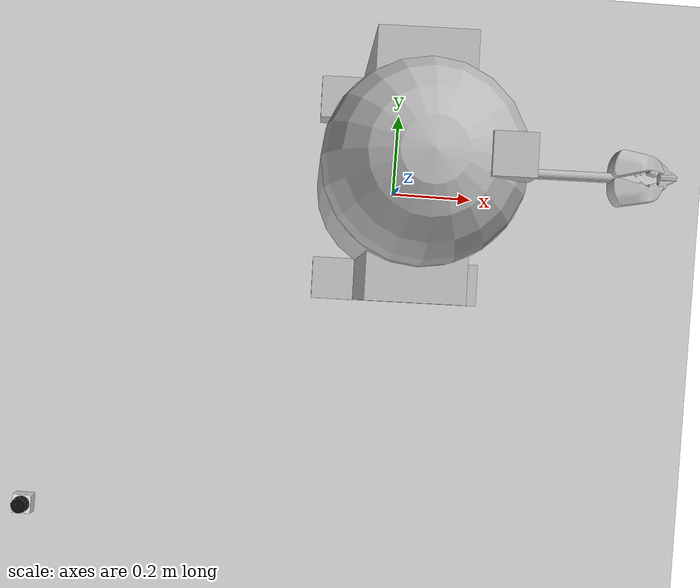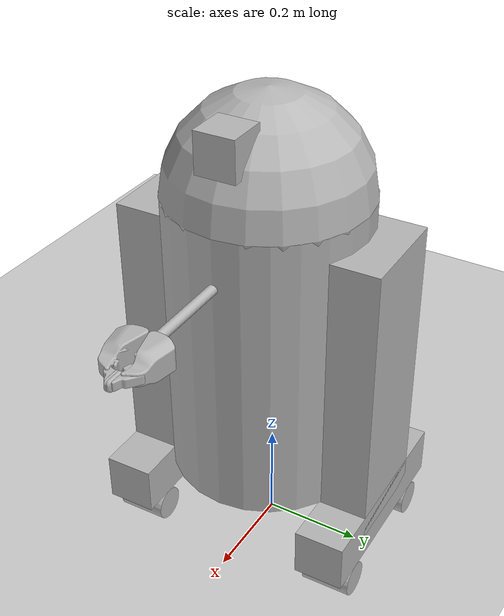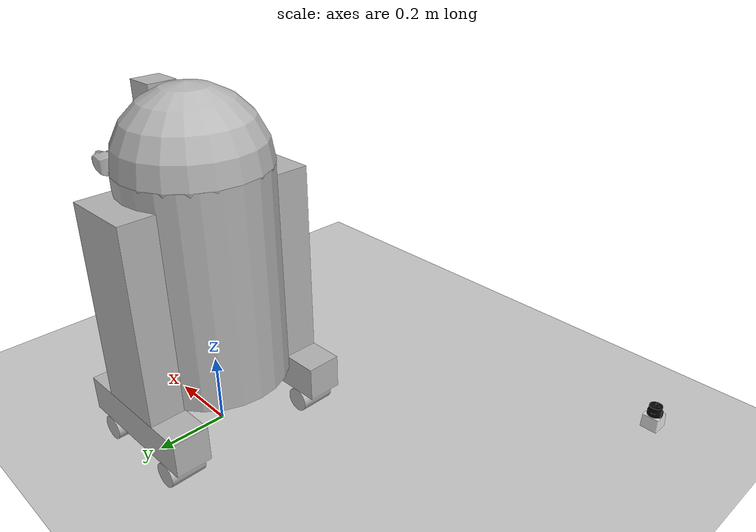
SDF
<sdf version="1.6">
 <world name="default">
  <light name="sun" type="directional">
   <pose>0 0 10 0 -0 0</pose>
   <diffuse>0.8 0.8 0.8 1</diffuse>
   <specular>0.2 0.2 0.2 1</specular>
   <attenuation>
    <range>1000</range>
    <constant>0.9</constant>
    <linear>0.01</linear>
    <quadratic>0.001</quadratic>
   </attenuation>
   <direction>-0.5 0.1 -0.9</direction>
  </light>
  <model name="ground_plane">
   <static>1</static>
   <link name="link">
    <collision name="collision">
     <geometry><plane><normal>0 0 1</normal><size>100 100</size></plane></geometry>
     <surface><friction><ode><mu>100</mu><mu2>50</mu2></ode></friction></surface>
    </collision>
    <visual name="visual">
     <cast_shadows>0</cast_shadows>
     <geometry><plane><normal>0 0 1</normal><size>100 100</size></plane></geometry>
     <material>
      <script><uri>file://media/materials/scripts/gazebo.material</uri><name>Gazebo/Grey</name></script>
     </material>
    </visual>
   </link>
  </model>
  <gravity>0 0 -9.8</gravity>
  <magnetic_field>6e-06 2.3e-05 -4.2e-05</magnetic_field>
  <atmosphere type="adiabatic"/>
  <physics name="default_physics" default="0" type="ode">
   <max_step_size>0.001</max_step_size>
   <real_time_factor>1</real_time_factor>
   <real_time_update_rate>1000</real_time_update_rate>
  </physics>
  <scene><ambient>0.4 0.4 0.4 1</ambient><background>0.7 0.7 0.7 1</background><shadows>1</shadows></scene>
  <audio><device>default</device></audio>
  <spherical_coordinates>
   <surface_model>EARTH_WGS84</surface_model>
   <latitude_deg>0</latitude_deg>
   <longitude_deg>0</longitude_deg>
   <elevation>0</elevation>
   <heading_deg>0</heading_deg>
  </spherical_coordinates>
  <model name="robot">
   <link name="base_link">
    <inertial>
     <pose>0 0 -0.04 0 -0 0</pose>
     <mass>50</mass>
     <inertia><ixx>10.556</ixx><ixy>0</ixy><ixz>0</ixz><iyy>8.62</iyy><iyz>0</iyz><izz>6.936</izz></inertia>
    </inertial>
    <collision name="base_link_collision">
     <geometry><cylinder><length>0.6</length><radius>0.2</radius></cylinder></geometry>
    </collision>
    <collision name="base_link_fixed_joint_lump__left_leg_collision_1">
     <pose>0 0.22 -0.05 3.14159 1.57079 3.14159</pose>
     <geometry><box><size>0.6 0.1 0.2</size></box></geometry>
    </collision>
    <collision name="base_link_fixed_joint_lump__left_base_collision_2">
     <pose>0 0.22 -0.35 0 -0 0</pose>
     <geometry><box><size>0.4 0.1 0.1</size></box></geometry>
    </collision>
    <collision name="base_link_fixed_joint_lump__right_leg_collision_3">
     <pose>0 -0.22 -0.05 3.14159 1.57079 3.14159</pose>
     <geometry><box><size>0.6 0.1 0.2</size></box></geometry>
    </collision>
    <collision name="base_link_fixed_joint_lump__right_base_collision_4">
     <pose>0 -0.22 -0.35 0 -0 0</pose>
     <geometry><box><size>0.4 0.1 0.1</size></box></geometry>
    </collision>
    <visual name="base_link_visual">
     <geometry><cylinder><length>0.6</length><radius>0.2</radius></cylinder></geometry>
    </visual>
    <visual name="base_link_fixed_joint_lump__left_leg_visual_1">
     <pose>0 0.22 -0.05 3.14159 1.57079 3.14159</pose>
     <geometry><box><size>0.6 0.1 0.2</size></box></geometry>
    </visual>
    <visual name="base_link_fixed_joint_lump__left_base_visual_2">
     <pose>0 0.22 -0.35 0 -0 0</pose>
     <geometry><box><size>0.4 0.1 0.1</size></box></geometry>
    </visual>
    <visual name="base_link_fixed_joint_lump__right_leg_visual_3">
     <pose>0 -0.22 -0.05 3.14159 1.57079 3.14159</pose>
     <geometry><box><size>0.6 0.1 0.2</size></box></geometry>
    </visual>
    <visual name="base_link_fixed_joint_lump__right_base_visual_4">
     <pose>0 -0.22 -0.35 0 -0 0</pose>
     <geometry><box><size>0.4 0.1 0.1</size></box></geometry>
    </visual>
   </link>
   <link name="left_back_wheel">
    <pose>-0.133333 0.22 -0.435 0 -0 0</pose>
    <inertial>
     <mass>1</mass>
     <inertia><ixx>1</ixx><ixy>0</ixy><ixz>0</ixz><iyy>1</iyy><iyz>0</iyz><izz>1</izz></inertia>
    </inertial>
    <collision name="left_back_wheel_collision">
     <pose>0 0 0 1.57075 -0 0</pose>
     <geometry><cylinder><length>0.1</length><radius>0.035</radius></cylinder></geometry>
    </collision>
    <visual name="left_back_wheel_visual">
     <pose>0 0 0 1.57075 -0 0</pose>
     <geometry><cylinder><length>0.1</length><radius>0.035</radius></cylinder></geometry>
    </visual>
   </link>
   <joint name="left_back_wheel_joint" type="revolute">
    <child>left_back_wheel</child>
    <parent>base_link</parent>
    <axis>
     <xyz>0 1 0</xyz>
     <limit><lower>-1e+16</lower><upper>1e+16</upper></limit>
     <dynamics><spring_reference>0</spring_reference><spring_stiffness>0</spring_stiffness></dynamics>
     <use_parent_model_frame>1</use_parent_model_frame>
    </axis>
   </joint>
   <link name="left_front_wheel">
    <pose>0.133333 0.22 -0.435 0 -0 0</pose>
    <inertial>
     <mass>1</mass>
     <inertia><ixx>1</ixx><ixy>0</ixy><ixz>0</ixz><iyy>1</iyy><iyz>0</iyz><izz>1</izz></inertia>
    </inertial>
    <collision name="left_front_wheel_collision">
     <pose>0 0 0 1.57075 -0 0</pose>
     <geometry><cylinder><length>0.1</length><radius>0.035</radius></cylinder></geometry>
    </collision>
    <visual name="left_front_wheel_visual">
     <pose>0 0 0 1.57075 -0 0</pose>
     <geometry><cylinder><length>0.1</length><radius>0.035</radius></cylinder></geometry>
    </visual>
   </link>
   <joint name="left_front_wheel_joint" type="revolute">
    <child>left_front_wheel</child>
    <parent>base_link</parent>
    <axis>
     <xyz>0 1 0</xyz>
     <limit><lower>-1e+16</lower><upper>1e+16</upper></limit>
     <dynamics><spring_reference>0</spring_reference><spring_stiffness>0</spring_stiffness></dynamics>
     <use_parent_model_frame>1</use_parent_model_frame>
    </axis>
   </joint>
   <link name="right_back_wheel">
    <pose>-0.133333 -0.22 -0.435 0 -0 0</pose>
    <inertial>
     <mass>1</mass>
     <inertia><ixx>1</ixx><ixy>0</ixy><ixz>0</ixz><iyy>1</iyy><iyz>0</iyz><izz>1</izz></inertia>
    </inertial>
    <collision name="right_back_wheel_collision">
     <pose>0 0 0 1.57075 -0 0</pose>
     <geometry><cylinder><length>0.1</length><radius>0.035</radius></cylinder></geometry>
    </collision>
    <visual name="right_back_wheel_visual">
     <pose>0 0 0 1.57075 -0 0</pose>
     <geometry><cylinder><length>0.1</length><radius>0.035</radius></cylinder></geometry>
    </visual>
   </link>
   <joint name="right_back_wheel_joint" type="revolute">
    <child>right_back_wheel</child>
    <parent>base_link</parent>
    <axis>
     <xyz>0 1 0</xyz>
     <limit><lower>-1e+16</lower><upper>1e+16</upper></limit>
     <dynamics><spring_reference>0</spring_reference><spring_stiffness>0</spring_stiffness></dynamics>
     <use_parent_model_frame>1</use_parent_model_frame>
    </axis>
   </joint>
   <link name="right_front_wheel">
    <pose>0.133333 -0.22 -0.435 0 -0 0</pose>
    <inertial>
     <mass>1</mass>
     <inertia><ixx>1</ixx><ixy>0</ixy><ixz>0</ixz><iyy>1</iyy><iyz>0</iyz><izz>1</izz></inertia>
    </inertial>
    <collision name="right_front_wheel_collision">
     <pose>0 0 0 1.57075 -0 0</pose>
     <geometry><cylinder><length>0.1</length><radius>0.035</radius></cylinder></geometry>
    </collision>
    <visual name="right_front_wheel_visual">
     <pose>0 0 0 1.57075 -0 0</pose>
     <geometry><cylinder><length>0.1</length><radius>0.035</radius></cylinder></geometry>
    </visual>
   </link>
   <joint name="right_front_wheel_joint" type="revolute">
    <child>right_front_wheel</child>
    <parent>base_link</parent>
    <axis>
     <xyz>0 1 0</xyz>
     <limit><lower>-1e+16</lower><upper>1e+16</upper></limit>
     <dynamics><spring_reference>0</spring_reference><spring_stiffness>0</spring_stiffness></dynamics>
     <use_parent_model_frame>1</use_parent_model_frame>
    </axis>
   </joint>
   <link name="gripper_pole">
    <pose>0.19 0 0.2 0 -0 0</pose>
    <inertial>
     <mass>0.05</mass>
     <inertia><ixx>1</ixx><ixy>0</ixy><ixz>0</ixz><iyy>1</iyy><iyz>0</iyz><izz>1</izz></inertia>
    </inertial>
    <collision name="gripper_pole_collision">
     <pose>0.1 0 0 3.14159 1.57079 3.14159</pose>
     <geometry><cylinder><length>0.2</length><radius>0.01</radius></cylinder></geometry>
    </collision>
    <visual name="gripper_pole_visual">
     <pose>0.1 0 0 3.14159 1.57079 3.14159</pose>
     <geometry><cylinder><length>0.2</length><radius>0.01</radius></cylinder></geometry>
    </visual>
   </link>
   <joint name="gripper_extension" type="prismatic">
    <child>gripper_pole</child>
    <parent>base_link</parent>
    <axis>
     <xyz>1 0 0</xyz>
     <limit><lower>-0.38</lower><upper>0</upper><effort>1000</effort><velocity>0.5</velocity></limit>
     <dynamics><spring_reference>0</spring_reference><spring_stiffness>0</spring_stiffness></dynamics>
     <use_parent_model_frame>1</use_parent_model_frame>
    </axis>
   </joint>
   <link name="left_gripper">
    <pose>0.39 0.01 0.2 0 -0 0</pose>
    <inertial>
     <mass>0.1</mass>
     <inertia><ixx>2</ixx><ixy>0</ixy><ixz>0</ixz><iyy>2</iyy><iyz>0</iyz><izz>2</izz></inertia>
    </inertial>
    <collision name="left_gripper_collision">
     <geometry>
      <mesh><scale>1 1 1</scale><uri>/home/jl/catkin_ws/src/urdf_tutorial/meshes/l_finger.dae</uri></mesh>
     </geometry>
    </collision>
    <collision name="left_gripper_fixed_joint_lump__left_tip_collision_1">
     <pose>0.09137 0.00495 0 0 -0 0</pose>
     <geometry>
      <mesh><scale>1 1 1</scale><uri>/home/jl/catkin_ws/src/urdf_tutorial/meshes/l_finger_tip.dae</uri></mesh>
     </geometry>
    </collision>
    <visual name="left_gripper_visual">
     <geometry>
      <mesh><scale>1 1 1</scale><uri>/home/jl/catkin_ws/src/urdf_tutorial/meshes/l_finger.dae</uri></mesh>
     </geometry>
    </visual>
    <visual name="left_gripper_fixed_joint_lump__left_tip_visual_1">
     <pose>0.09137 0.00495 0 0 -0 0</pose>
     <geometry>
      <mesh><scale>1 1 1</scale><uri>/home/jl/catkin_ws/src/urdf_tutorial/meshes/l_finger_tip.dae</uri></mesh>
     </geometry>
    </visual>
   </link>
   <joint name="left_gripper_joint" type="revolute">
    <child>left_gripper</child>
    <parent>gripper_pole</parent>
    <axis>
     <xyz>0 0 1</xyz>
     <limit><lower>0</lower><upper>0.548</upper><effort>1000</effort><velocity>0.5</velocity></limit>
     <dynamics><spring_reference>0</spring_reference><spring_stiffness>0</spring_stiffness></dynamics>
     <use_parent_model_frame>1</use_parent_model_frame>
    </axis>
   </joint>
   <link name="right_gripper">
    <pose>0.39 -0.01 0.2 0 -0 0</pose>
    <inertial>
     <mass>0.1</mass>
     <inertia><ixx>2</ixx><ixy>0</ixy><ixz>0</ixz><iyy>2</iyy><iyz>0</iyz><izz>2</izz></inertia>
    </inertial>
    <collision name="right_gripper_collision">
     <pose>0 0 0 -3.1415 0 0</pose>
     <geometry>
      <mesh><scale>1 1 1</scale><uri>/home/jl/catkin_ws/src/urdf_tutorial/meshes/l_finger.dae</uri></mesh>
     </geometry>
    </collision>
    <collision name="right_gripper_fixed_joint_lump__right_tip_collision_1">
     <pose>0.09137 0.00495 0 -3.1415 0 0</pose>
     <geometry>
      <mesh><scale>1 1 1</scale><uri>/home/jl/catkin_ws/src/urdf_tutorial/meshes/l_finger_tip.dae</uri></mesh>
     </geometry>
    </collision>
    <visual name="right_gripper_visual">
     <pose>0 0 0 -3.1415 0 0</pose>
     <geometry>
      <mesh><scale>1 1 1</scale><uri>/home/jl/catkin_ws/src/urdf_tutorial/meshes/l_finger.dae</uri></mesh>
     </geometry>
    </visual>
    <visual name="right_gripper_fixed_joint_lump__right_tip_visual_1">
     <pose>0.09137 0.00495 0 -3.1415 0 0</pose>
     <geometry>
      <mesh><scale>1 1 1</scale><uri>/home/jl/catkin_ws/src/urdf_tutorial/meshes/l_finger_tip.dae</uri></mesh>
     </geometry>
    </visual>
   </link>
   <joint name="right_gripper_joint" type="revolute">
    <child>right_gripper</child>
    <parent>gripper_pole</parent>
    <axis>
     <xyz>0 0 -1</xyz>
     <limit><lower>0</lower><upper>0.548</upper><effort>1000</effort><velocity>0.5</velocity></limit>
     <dynamics><spring_reference>0</spring_reference><spring_stiffness>0</spring_stiffness></dynamics>
     <use_parent_model_frame>1</use_parent_model_frame>
    </axis>
   </joint>
   <link name="head">
    <pose>0 0 0.3 0 -0 0</pose>
    <inertial>
     <pose>0.060467 0 0.047133 0 -0 0</pose>
     <mass>3</mass>
     <inertia>
      <ixx>2.01333</ixx>
      <ixy>0</ixy>
      <ixz>-0.0171</ixz>
      <iyy>2.03527</iyy>
      <iyz>0</iyz>
      <izz>2.02194</izz>
     </inertia>
    </inertial>
    <collision name="head_collision"><geometry><sphere><radius>0.2</radius></sphere></geometry></collision>
    <collision name="head_fixed_joint_lump__box_collision_1">
     <pose>0.1814 0 0.1414 0 -0 0</pose>
     <geometry><box><size>0.08 0.08 0.08</size></box></geometry>
    </collision>
    <visual name="head_visual"><geometry><sphere><radius>0.2</radius></sphere></geometry></visual>
    <visual name="head_fixed_joint_lump__box_visual_1">
     <pose>0.1414 0 0.1414 0 -0 0</pose>
     <geometry><box><size>0.08 0.08 0.08</size></box></geometry>
    </visual>
   </link>
   <joint name="head_swivel" type="revolute">
    <child>head</child>
    <parent>base_link</parent>
    <axis>
     <xyz>0 0 1</xyz>
     <limit><lower>-1e+16</lower><upper>1e+16</upper></limit>
     <dynamics><spring_reference>0</spring_reference><spring_stiffness>0</spring_stiffness></dynamics>
     <use_parent_model_frame>1</use_parent_model_frame>
    </axis>
   </joint>
   <pose>0.003112 -0.00586 0.470001 3e-06 -0 0.020599</pose>
  </model>
  <model name="hokuyo">
   <pose>-0.88592 -0.857605 0.035 -6e-06 1e-06 1e-06</pose>
   <link name="link">
    <inertial>
     <mass>0.1</mass>
     <inertia><ixx>1</ixx><ixy>0</ixy><ixz>0</ixz><iyy>1</iyy><iyz>0</iyz><izz>1</izz></inertia>
    </inertial>
    <visual name="visual"><geometry><mesh><uri>model://hokuyo/meshes/hokuyo.dae</uri></mesh></geometry></visual>
    <collision name="collision-base">
     <pose>0 0 -0.0145 0 -0 0</pose>
     <geometry><box><size>0.05 0.05 0.041</size></box></geometry>
    </collision>
    <collision name="collision-top">
     <pose>0 0 0.0205 0 -0 0</pose>
     <geometry><cylinder><radius>0.021</radius><length>0.029</length></cylinder></geometry>
    </collision>
    <sensor name="laser" type="ray">
     <pose>0.01 0 0.0175 0 -0 0</pose>
     <ray>
      <scan>
       <horizontal>
        <samples>640</samples>
        <resolution>1</resolution>
        <min_angle>-2.26889</min_angle>
        <max_angle>2.2689</max_angle>
       </horizontal>
       <vertical><samples>1</samples><min_angle>0</min_angle><max_angle>0</max_angle></vertical>
      </scan>
      <range><min>0.08</min><max>10</max><resolution>0.01</resolution></range>
     </ray>
     <plugin name="laser" filename="libRayPlugin.so"/>
     <always_on>1</always_on>
     <update_rate>30</update_rate>
     <visualize>1</visualize>
    </sensor>
   </link>
  </model>
 </world>
</sdf>
